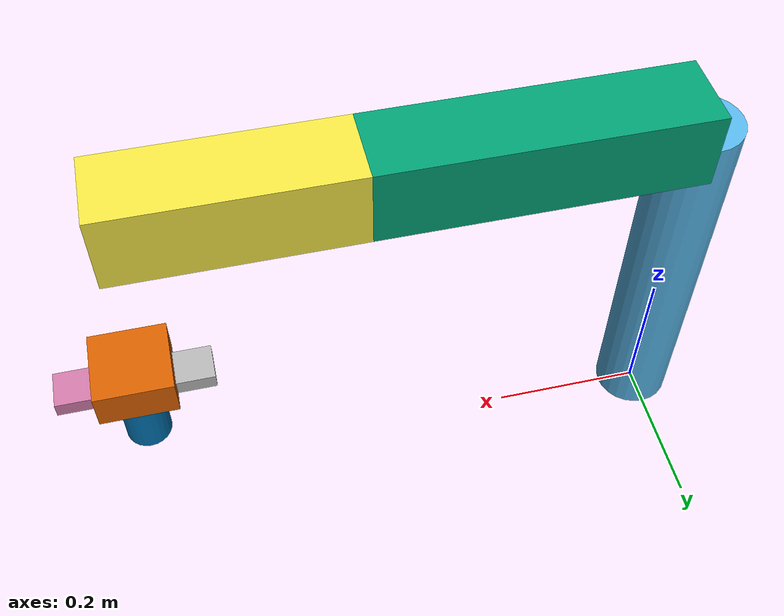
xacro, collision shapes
<?xml version="1.0"?>
<robot xmlns:xacro="http://www.ros.org/wiki/xacro" name="scara_robot">
    <xacro:arg name="initial_positions_file" default="initial_positions.yaml" />

    <!-- Import scara_robot urdf file -->
    <xacro:include filename="$(find scara_pkg)/urdf/robot.urdf" />

    <!-- Import control_xacro -->
    <xacro:include filename="scara_robot.ros2_control.xacro" />

    <xacro:scara_robot_ros2_control name="FakeSystem" initial_positions_file="$(arg initial_positions_file)"/>

</robot>

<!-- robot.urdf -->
<robot name="scara_robot">

  <!-- ============ World + fixed base ============ -->
  <link name="world"/>
  <joint name="fixed" type="fixed">
    <parent link="world"/>
    <child link="base_link"/>
  </joint>

  <!-- ============ base_link: vertical column, length 0.5 ============ -->
  <link name="base_link">
    <visual>
      <geometry><mesh filename="package://scara_pkg/meshes/base_link.dae"/></geometry>
      <origin xyz="0 0 0"/>
    </visual>
    <collision>
      <geometry><cylinder length="0.5" radius="0.05"/></geometry>
      <origin xyz="0 0 0.25"/>
    </collision>
  </link>

  <!-- ============ joint_1 (R) — base rotation, vertical axis ============ -->
  <joint name="joint_1" type="revolute">
    <parent link="base_link"/>
    <child link="link1"/>
    <origin xyz="0 0 0.5"/>            <!-- top of column -->
    <axis xyz="0 0 1"/>
    <limit effort="300" velocity="2.0" lower="-3.14" upper="3.14"/>
  </joint>

  <!-- ============ link1: horizontal arm, length 0.4 ============ -->
  <link name="link1">
    <visual>
      <geometry><mesh filename="package://scara_pkg/meshes/link1.dae"/></geometry>
      <origin xyz="0 0 0"/>
    </visual>
    <collision>
      <geometry><box size="0.4 0.1 0.1"/></geometry>
      <origin xyz="0.2 0 0"/>
    </collision>
  </link>

  <joint name="joint_2" type="revolute">
    <parent link="link1"/>
    <child link="link2"/>
    <origin xyz="0.4 0 0"/>             <!-- end of link1 -->
    <axis xyz="0 0 1"/>
    <limit effort="300" velocity="2.0" lower="-3.14" upper="3.14"/>
  </joint>

  <!-- ============ link2: horizontal arm, length 0.3 ============ -->
  <link name="link2">
    <visual>
      <geometry><mesh filename="package://scara_pkg/meshes/link2.dae"/></geometry>
      <origin xyz="0 0 0"/>
    </visual>
    <collision>
      <geometry><box size="0.3 0.1 0.1"/></geometry>
      <origin xyz="0.15 0 0"/>
    </collision>
  </link>

  <joint name="joint_3" type="prismatic">
    <parent link="link2"/>
    <child link="link3"/>
    <origin xyz="0.3 0 0" rpy="3.14159 0 0"/>
    <axis xyz="0 0 1"/>
    <limit effort="300" velocity="0.5" lower="0.2" upper="0.4"/>
  </joint>

  <!-- ============ link3: short shaft / wrist mount ============
       In link3's frame, +z points down (because joint_3 flipped it). -->
  <link name="link3">
    <visual>
      <geometry><mesh filename="package://scara_pkg/meshes/link3.dae"/></geometry>
      <origin xyz="0 0 0"/>
    </visual>
    <collision>
      <geometry><cylinder length="0.1" radius="0.03"/></geometry>
      <origin xyz="0 0 0.05"/>
    </collision>
  </link>

  <joint name="joint_4" type="revolute">
    <parent link="link3"/>
    <child link="hand"/>
    <origin xyz="0 0 -0.05"/>
    <axis xyz="0 0 1"/>
    <limit effort="300" velocity="2.0" lower="-3.14" upper="3.14"/>
  </joint>

  <link name="hand">
    <visual>
      <geometry><mesh filename="package://scara_pkg/meshes/hand.dae"/></geometry>
      <origin xyz="0 0 0"/>
    </visual>
    <collision>
      <geometry><box size="0.1 0.1 0.05"/></geometry>
      <origin xyz="0 0 0.025"/>
    </collision>
  </link>

  <!-- finger1: slides along +x. At joint=0, inner edge of finger1
       sits at hand_x=0. At joint=0.11, gap is 0.22 — meets the
       brief's "≥ 0.2 when fully open" requirement. -->
  <joint name="finger1_joint" type="prismatic">
    <parent link="hand"/>
    <child link="finger1"/>
    <origin xyz="0 0 0.05" rpy="0 1.57079633 0"/>
    <axis xyz="0 0 1"/>
    <limit effort="300" velocity="0.5" lower="0.0" upper="0.11"/>
</joint>
  <link name="finger1">
    <visual>
      <geometry><mesh filename="package://scara_pkg/meshes/finger.dae"/></geometry>
      <origin xyz="0 0 0" rpy="0 0 3.14159"/>
    </visual>
    <collision>
      <geometry><box size="0.02 0.05 0.1"/></geometry>
      <origin xyz="0.01 0 0.05"/>
    </collision>
  </link>

  <!-- finger2: mirrored along -x. -->
  <joint name="finger2_joint" type="prismatic">
    <parent link="hand"/>
    <child link="finger2"/>
    <origin xyz="0 0 0.05" rpy="0 -1.57079633 0"/>
    <axis xyz="0 0 1"/>
    <limit effort="300" velocity="0.5" lower="0.0" upper="0.11"/>
</joint>
  <link name="finger2">
    <visual>
      <geometry><mesh filename="package://scara_pkg/meshes/finger.dae"/></geometry>
      <origin xyz="0 0 0"/>
    </visual>
    <collision>
      <geometry><box size="0.02 0.05 0.1"/></geometry>
      <origin xyz="-0.01 0 0.05"/>
    </collision>
  </link>

</robot>
